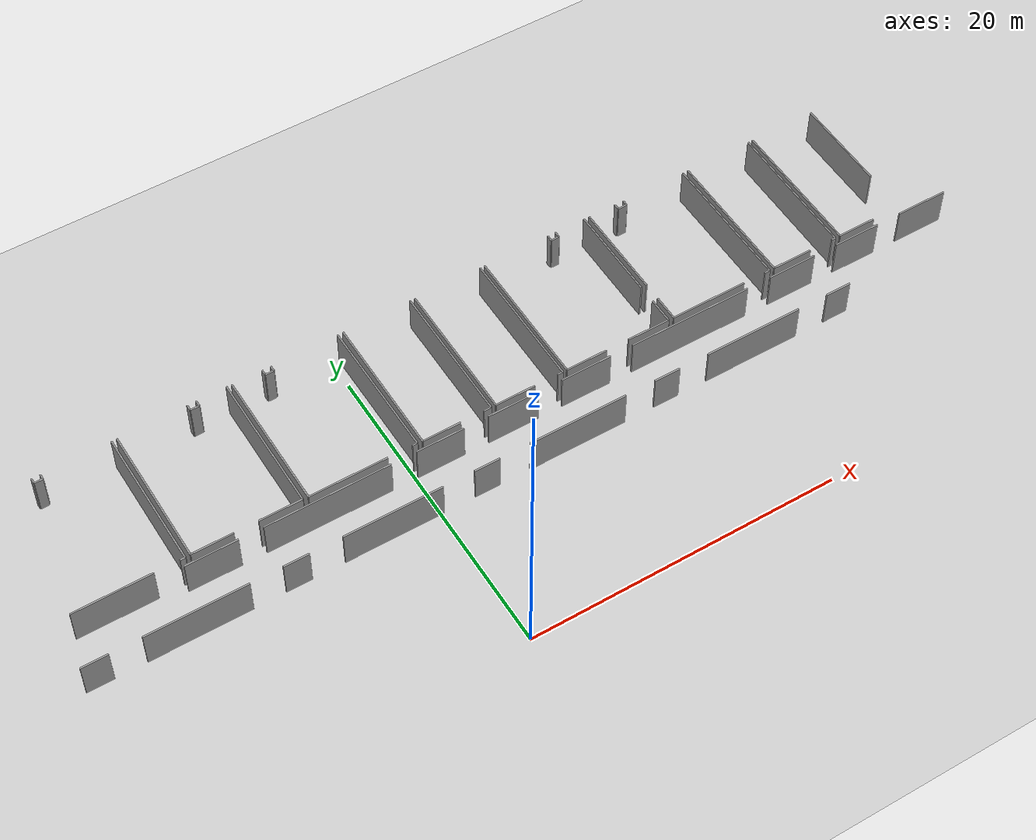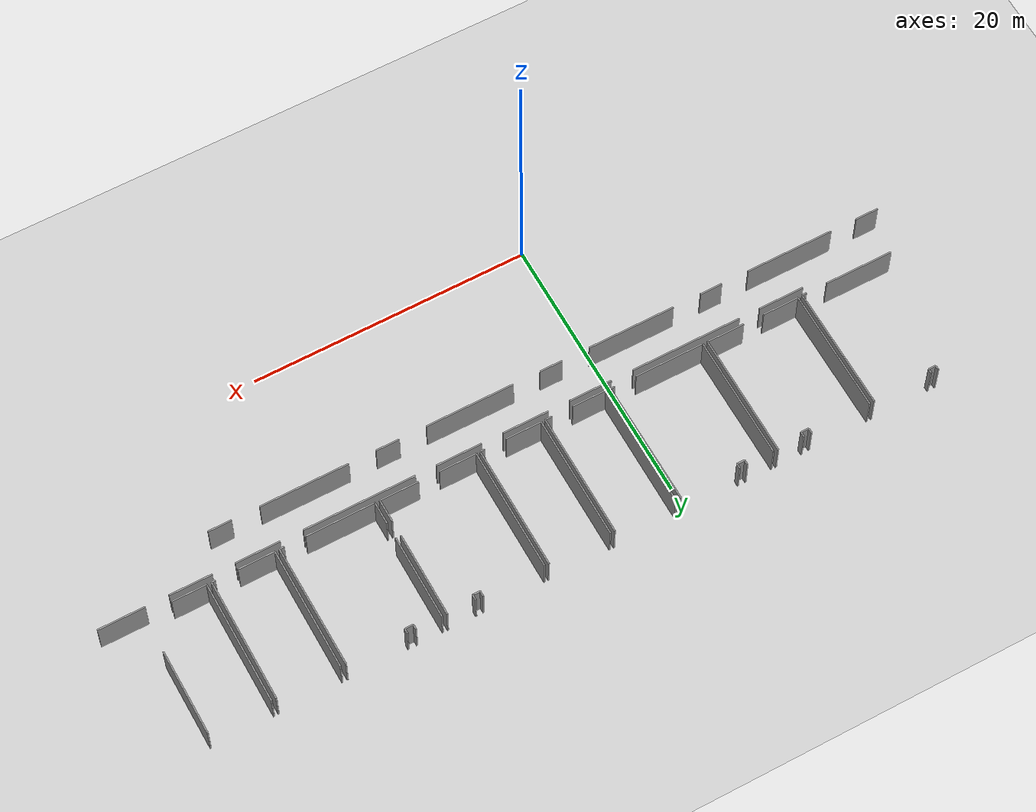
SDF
<sdf version="1.6">
 <world name="default">
  <model name="ground_plane">
   <static>1</static>
   <link name="link">
    <collision name="collision">
     <geometry><plane><normal>0 0 1</normal><size>100 100</size></plane></geometry>
     <surface><friction><ode><mu>100</mu><mu2>50</mu2></ode></friction></surface>
    </collision>
    <visual name="visual">
     <cast_shadows>0</cast_shadows>
     <geometry><plane><normal>0 0 1</normal><size>100 100</size></plane></geometry>
     <material>
      <script><uri>file://media/materials/scripts/gazebo.material</uri><name>Gazebo/Grey</name></script>
     </material>
    </visual>
   </link>
  </model>
  <model name="50010536_PLAN4">
   <static>1</static>
   <link name="Wall_125">
    <collision name="Wall_125_Collision">
     <geometry><box><size>1.66663492366 0.1 2.5</size></box></geometry>
     <pose>0.833317461829 0 1.25 0 0 0</pose>
    </collision>
    <visual name="Wall_125_Visual">
     <pose>0.833317461829 0 1.25 0 0 0</pose>
     <geometry><box><size>1.66663492366 0.1 2.5</size></box></geometry>
     <material>
      <script><uri>file://media/materials/scripts/gazebo.material</uri><name>Gazebo/Grey</name></script>
      <ambient>1 1 1 1</ambient>
     </material>
    </visual>
    <pose>130.382046154 -12.5381074818 0 0 0 3.14159265359</pose>
   </link>
   <link name="Wall_126">
    <collision name="Wall_126_Collision">
     <geometry><box><size>6.3760276799 0.1 2.5</size></box></geometry>
     <pose>3.18801383995 0 1.25 0 0 0</pose>
    </collision>
    <visual name="Wall_126_Visual">
     <pose>3.18801383995 0 1.25 0 0 0</pose>
     <geometry><box><size>6.3760276799 0.1 2.5</size></box></geometry>
     <material>
      <script><uri>file://media/materials/scripts/gazebo.material</uri><name>Gazebo/Grey</name></script>
      <ambient>1 1 1 1</ambient>
     </material>
    </visual>
    <pose>126.72068057 -12.5381074818 0 0 0 3.14159265359</pose>
   </link>
   <link name="Wall_127">
    <collision name="Wall_127_Collision">
     <geometry><box><size>1.69177538647 0.1 2.5</size></box></geometry>
     <pose>0.845887693236 0 1.25 0 0 0</pose>
    </collision>
    <visual name="Wall_127_Visual">
     <pose>0.845887693236 0 1.25 0 0 0</pose>
     <geometry><box><size>1.69177538647 0.1 2.5</size></box></geometry>
     <material>
      <script><uri>file://media/materials/scripts/gazebo.material</uri><name>Gazebo/Grey</name></script>
      <ambient>1 1 1 1</ambient>
     </material>
    </visual>
    <pose>118.387759896 -12.5381074818 0 0 0 3.14159265359</pose>
   </link>
   <link name="Wall_128">
    <collision name="Wall_128_Collision">
     <geometry><box><size>6.3760276799 0.1 2.5</size></box></geometry>
     <pose>3.18801383995 0 1.25 0 0 0</pose>
    </collision>
    <visual name="Wall_128_Visual">
     <pose>3.18801383995 0 1.25 0 0 0</pose>
     <geometry><box><size>6.3760276799 0.1 2.5</size></box></geometry>
     <material>
      <script><uri>file://media/materials/scripts/gazebo.material</uri><name>Gazebo/Grey</name></script>
      <ambient>1 1 1 1</ambient>
     </material>
    </visual>
    <pose>114.726394312 -12.5381074818 0 0 0 3.14159265359</pose>
   </link>
   <link name="Wall_129">
    <collision name="Wall_129_Collision">
     <geometry><box><size>1.64149446085 0.1 2.5</size></box></geometry>
     <pose>0.820747230423 0 1.25 0 0 0</pose>
    </collision>
    <visual name="Wall_129_Visual">
     <pose>0.820747230423 0 1.25 0 0 0</pose>
     <geometry><box><size>1.64149446085 0.1 2.5</size></box></geometry>
     <material>
      <script><uri>file://media/materials/scripts/gazebo.material</uri><name>Gazebo/Grey</name></script>
      <ambient>1 1 1 1</ambient>
     </material>
    </visual>
    <pose>106.368333175 -12.5381074818 0 0 0 3.14159265359</pose>
   </link>
   <link name="Wall_130">
    <collision name="Wall_130_Collision">
     <geometry><box><size>6.31279560677 0.1 2.5</size></box></geometry>
     <pose>3.15639780338 0 1.25 0 0 0</pose>
    </collision>
    <visual name="Wall_130_Visual">
     <pose>3.15639780338 0 1.25 0 0 0</pose>
     <geometry><box><size>6.31279560677 0.1 2.5</size></box></geometry>
     <material>
      <script><uri>file://media/materials/scripts/gazebo.material</uri><name>Gazebo/Grey</name></script>
      <ambient>1 1 1 1</ambient>
     </material>
    </visual>
    <pose>102.71941085 -12.5381074818 0 0 0 3.14159265359</pose>
   </link>
   <link name="Wall_131">
    <collision name="Wall_131_Collision">
     <geometry><box><size>1.61584610989 0.1 2.5</size></box></geometry>
     <pose>0.807923054947 0 1.25 0 0 0</pose>
    </collision>
    <visual name="Wall_131_Visual">
     <pose>0.807923054947 0 1.25 0 0 0</pose>
     <geometry><box><size>1.61584610989 0.1 2.5</size></box></geometry>
     <material>
      <script><uri>file://media/materials/scripts/gazebo.material</uri><name>Gazebo/Grey</name></script>
      <ambient>1 1 1 1</ambient>
     </material>
    </visual>
    <pose>94.3486525093 -12.5381074818 0 0 0 3.14159265359</pose>
   </link>
   <link name="Wall_132">
    <collision name="Wall_132_Collision">
     <geometry><box><size>6.38872488334 0.1 2.5</size></box></geometry>
     <pose>3.19436244167 0 1.25 0 0 0</pose>
    </collision>
    <visual name="Wall_132_Visual">
     <pose>3.19436244167 0 1.25 0 0 0</pose>
     <geometry><box><size>6.38872488334 0.1 2.5</size></box></geometry>
     <material>
      <script><uri>file://media/materials/scripts/gazebo.material</uri><name>Gazebo/Grey</name></script>
      <ambient>1 1 1 1</ambient>
     </material>
    </visual>
    <pose>90.7253785354 -12.5381074818 0 0 0 3.14159265359</pose>
   </link>
   <link name="Wall_133">
    <collision name="Wall_133_Collision">
     <geometry><box><size>1.66663492366 0.1 2.5</size></box></geometry>
     <pose>0.833317461829 0 1.25 0 0 0</pose>
    </collision>
    <visual name="Wall_133_Visual">
     <pose>0.833317461829 0 1.25 0 0 0</pose>
     <geometry><box><size>1.66663492366 0.1 2.5</size></box></geometry>
     <material>
      <script><uri>file://media/materials/scripts/gazebo.material</uri><name>Gazebo/Grey</name></script>
      <ambient>1 1 1 1</ambient>
     </material>
    </visual>
    <pose>82.3924578612 -12.5381074818 0 0 0 3.14159265359</pose>
   </link>
   <link name="Wall_139">
    <collision name="Wall_139_Collision">
     <geometry><box><size>3.29517823699 0.1 2.5</size></box></geometry>
     <pose>1.6475891185 0 1.25 0 0 0</pose>
    </collision>
    <visual name="Wall_139_Visual">
     <pose>1.6475891185 0 1.25 0 0 0</pose>
     <geometry><box><size>3.29517823699 0.1 2.5</size></box></geometry>
     <material>
      <script><uri>file://media/materials/scripts/gazebo.material</uri><name>Gazebo/Grey</name></script>
      <ambient>1 1 1 1</ambient>
     </material>
    </visual>
    <pose>88.2128559185 -9.72273116846 0 0 0 0.0</pose>
   </link>
   <link name="Wall_140">
    <collision name="Wall_140_Collision">
     <geometry><box><size>8.0 0.1 2.5</size></box></geometry>
     <pose>4.0 0 1.25 0 0 0</pose>
    </collision>
    <visual name="Wall_140_Visual">
     <pose>4.0 0 1.25 0 0 0</pose>
     <geometry><box><size>8.0 0.1 2.5</size></box></geometry>
     <material>
      <script><uri>file://media/materials/scripts/gazebo.material</uri><name>Gazebo/Grey</name></script>
      <ambient>1 1 1 1</ambient>
     </material>
    </visual>
    <pose>93.0421102752 -9.72273116846 0 0 0 0.0</pose>
   </link>
   <link name="Wall_141">
    <collision name="Wall_141_Collision">
     <geometry><box><size>3.07805605815 0.1 2.5</size></box></geometry>
     <pose>1.53902802908 0 1.25 0 0 0</pose>
    </collision>
    <visual name="Wall_141_Visual">
     <pose>1.53902802908 0 1.25 0 0 0</pose>
     <geometry><box><size>3.07805605815 0.1 2.5</size></box></geometry>
     <material>
      <script><uri>file://media/materials/scripts/gazebo.material</uri><name>Gazebo/Grey</name></script>
      <ambient>1 1 1 1</ambient>
     </material>
    </visual>
    <pose>102.65389328 -9.72273116846 0 0 0 0.0</pose>
   </link>
   <link name="Wall_142">
    <collision name="Wall_142_Collision">
     <geometry><box><size>3.33377773545 0.1 2.5</size></box></geometry>
     <pose>1.66688886773 0 1.25 0 0 0</pose>
    </collision>
    <visual name="Wall_142_Visual">
     <pose>1.66688886773 0 1.25 0 0 0</pose>
     <geometry><box><size>3.33377773545 0.1 2.5</size></box></geometry>
     <material>
      <script><uri>file://media/materials/scripts/gazebo.material</uri><name>Gazebo/Grey</name></script>
      <ambient>1 1 1 1</ambient>
     </material>
    </visual>
    <pose>107.314528775 -9.72273116846 0 0 0 0.0</pose>
   </link>
   <link name="Wall_143">
    <collision name="Wall_143_Collision">
     <geometry><box><size>3.29517823699 0.1 2.5</size></box></geometry>
     <pose>1.6475891185 0 1.25 0 0 0</pose>
    </collision>
    <visual name="Wall_143_Visual">
     <pose>1.6475891185 0 1.25 0 0 0</pose>
     <geometry><box><size>3.29517823699 0.1 2.5</size></box></geometry>
     <material>
      <script><uri>file://media/materials/scripts/gazebo.material</uri><name>Gazebo/Grey</name></script>
      <ambient>1 1 1 1</ambient>
     </material>
    </visual>
    <pose>112.213871695 -9.72273116846 0 0 0 0.0</pose>
   </link>
   <link name="Wall_144">
    <collision name="Wall_144_Collision">
     <geometry><box><size>8.04367837984 0.1 2.5</size></box></geometry>
     <pose>4.02183918992 0 1.25 0 0 0</pose>
    </collision>
    <visual name="Wall_144_Visual">
     <pose>4.02183918992 0 1.25 0 0 0</pose>
     <geometry><box><size>8.04367837984 0.1 2.5</size></box></geometry>
     <material>
      <script><uri>file://media/materials/scripts/gazebo.material</uri><name>Gazebo/Grey</name></script>
      <ambient>1 1 1 1</ambient>
     </material>
    </visual>
    <pose>117.013414595 -9.72273116846 0 0 0 0.0</pose>
   </link>
   <link name="Wall_145">
    <collision name="Wall_145_Collision">
     <geometry><box><size>3.17252325175 0.1 2.5</size></box></geometry>
     <pose>1.58626162588 0 1.25 0 0 0</pose>
    </collision>
    <visual name="Wall_145_Visual">
     <pose>1.58626162588 0 1.25 0 0 0</pose>
     <geometry><box><size>3.17252325175 0.1 2.5</size></box></geometry>
     <material>
      <script><uri>file://media/materials/scripts/gazebo.material</uri><name>Gazebo/Grey</name></script>
      <ambient>1 1 1 1</ambient>
     </material>
    </visual>
    <pose>126.686906009 -9.72273116846 0 0 0 0.0</pose>
   </link>
   <link name="Wall_146">
    <collision name="Wall_146_Collision">
     <geometry><box><size>3.03386979018 0.1 2.5</size></box></geometry>
     <pose>1.51693489509 0 1.25 0 0 0</pose>
    </collision>
    <visual name="Wall_146_Visual">
     <pose>1.51693489509 0 1.25 0 0 0</pose>
     <geometry><box><size>3.03386979018 0.1 2.5</size></box></geometry>
     <material>
      <script><uri>file://media/materials/scripts/gazebo.material</uri><name>Gazebo/Grey</name></script>
      <ambient>1 1 1 1</ambient>
     </material>
    </visual>
    <pose>131.462324223 -9.72273116846 0 0 0 0.0</pose>
   </link>
   <link name="Wall_147">
    <collision name="Wall_147_Collision">
     <geometry><box><size>3.3309843507 0.1 2.5</size></box></geometry>
     <pose>1.66549217535 0 1.25 0 0 0</pose>
    </collision>
    <visual name="Wall_147_Visual">
     <pose>1.66549217535 0 1.25 0 0 0</pose>
     <geometry><box><size>3.3309843507 0.1 2.5</size></box></geometry>
     <material>
      <script><uri>file://media/materials/scripts/gazebo.material</uri><name>Gazebo/Grey</name></script>
      <ambient>1 1 1 1</ambient>
     </material>
    </visual>
    <pose>136.137688474 -9.72273116846 0 0 0 0.0</pose>
   </link>
   <link name="Wall_165">
    <collision name="Wall_165_Collision">
     <geometry><box><size>0.321493191125 0.1 2.5</size></box></geometry>
     <pose>0.160746595562 0 1.25 0 0 0</pose>
    </collision>
    <visual name="Wall_165_Visual">
     <pose>0.160746595562 0 1.25 0 0 0</pose>
     <geometry><box><size>0.321493191125 0.1 2.5</size></box></geometry>
     <material>
      <script><uri>file://media/materials/scripts/gazebo.material</uri><name>Gazebo/Grey</name></script>
      <ambient>1 1 1 1</ambient>
     </material>
    </visual>
    <pose>88.5323175571 -9.25504237692 0 0 0 3.14159265359</pose>
   </link>
   <link name="Wall_166">
    <collision name="Wall_166_Collision">
     <geometry><box><size>4.97425642002 0.1 2.5</size></box></geometry>
     <pose>2.48712821001 0 1.25 0 0 0</pose>
    </collision>
    <visual name="Wall_166_Visual">
     <pose>2.48712821001 0 1.25 0 0 0</pose>
     <geometry><box><size>4.97425642002 0.1 2.5</size></box></geometry>
     <material>
      <script><uri>file://media/materials/scripts/gazebo.material</uri><name>Gazebo/Grey</name></script>
      <ambient>1 1 1 1</ambient>
     </material>
    </visual>
    <pose>86.6597339936 -9.25504237692 0 0 0 3.14159265359</pose>
   </link>
   <link name="Wall_168">
    <collision name="Wall_168_Collision">
     <geometry><box><size>0.343687902739 0.1 2.5</size></box></geometry>
     <pose>0.17184395137 0 1.25 0 0 0</pose>
    </collision>
    <visual name="Wall_168_Visual">
     <pose>0.17184395137 0 1.25 0 0 0</pose>
     <geometry><box><size>0.343687902739 0.1 2.5</size></box></geometry>
     <material>
      <script><uri>file://media/materials/scripts/gazebo.material</uri><name>Gazebo/Grey</name></script>
      <ambient>1 1 1 1</ambient>
     </material>
    </visual>
    <pose>83.6438942323 -0.207624670666 0 0 0 -1.57079632679</pose>
   </link>
   <link name="Wall_169">
    <collision name="Wall_169_Collision">
     <geometry><box><size>0.534552264864 0.1 2.5</size></box></geometry>
     <pose>0.267276132432 0 1.25 0 0 0</pose>
    </collision>
    <visual name="Wall_169_Visual">
     <pose>0.267276132432 0 1.25 0 0 0</pose>
     <geometry><box><size>0.534552264864 0.1 2.5</size></box></geometry>
     <material>
      <script><uri>file://media/materials/scripts/gazebo.material</uri><name>Gazebo/Grey</name></script>
      <ambient>1 1 1 1</ambient>
     </material>
    </visual>
    <pose>83.6438942323 -0.551312573406 0 0 0 0.0</pose>
   </link>
   <link name="Wall_170">
    <collision name="Wall_170_Collision">
     <geometry><box><size>0.334139605752 0.1 2.5</size></box></geometry>
     <pose>0.167069802876 0 1.25 0 0 0</pose>
    </collision>
    <visual name="Wall_170_Visual">
     <pose>0.167069802876 0 1.25 0 0 0</pose>
     <geometry><box><size>0.334139605752 0.1 2.5</size></box></geometry>
     <material>
      <script><uri>file://media/materials/scripts/gazebo.material</uri><name>Gazebo/Grey</name></script>
      <ambient>1 1 1 1</ambient>
     </material>
    </visual>
    <pose>84.1784464972 -0.551312573406 0 0 0 1.57079632679</pose>
   </link>
   <link name="Wall_171">
    <collision name="Wall_171_Collision">
     <geometry><box><size>9.03788059735 0.1 2.5</size></box></geometry>
     <pose>4.51894029868 0 1.25 0 0 0</pose>
    </collision>
    <visual name="Wall_171_Visual">
     <pose>4.51894029868 0 1.25 0 0 0</pose>
     <geometry><box><size>9.03788059735 0.1 2.5</size></box></geometry>
     <material>
      <script><uri>file://media/materials/scripts/gazebo.material</uri><name>Gazebo/Grey</name></script>
      <ambient>1 1 1 1</ambient>
     </material>
    </visual>
    <pose>88.5180966892 -0.217172967654 0 0 0 -1.5692228524</pose>
   </link>
   <link name="Wall_172">
    <collision name="Wall_172_Collision">
     <geometry><box><size>2.72253436181 0.1 2.5</size></box></geometry>
     <pose>1.3612671809 0 1.25 0 0 0</pose>
    </collision>
    <visual name="Wall_172_Visual">
     <pose>1.3612671809 0 1.25 0 0 0</pose>
     <geometry><box><size>2.72253436181 0.1 2.5</size></box></geometry>
     <material>
      <script><uri>file://media/materials/scripts/gazebo.material</uri><name>Gazebo/Grey</name></script>
      <ambient>1 1 1 1</ambient>
     </material>
    </visual>
    <pose>95.7341713488 -9.22210583119 0 0 0 3.14159265359</pose>
   </link>
   <link name="Wall_173">
    <collision name="Wall_173_Collision">
     <geometry><box><size>2.6387328191 0.1 2.5</size></box></geometry>
     <pose>1.31936640955 0 1.25 0 0 0</pose>
    </collision>
    <visual name="Wall_173_Visual">
     <pose>1.31936640955 0 1.25 0 0 0</pose>
     <geometry><box><size>2.6387328191 0.1 2.5</size></box></geometry>
     <material>
      <script><uri>file://media/materials/scripts/gazebo.material</uri><name>Gazebo/Grey</name></script>
      <ambient>1 1 1 1</ambient>
     </material>
    </visual>
    <pose>91.495336952 -9.22210583119 0 0 0 3.14159265359</pose>
   </link>
   <link name="Wall_174">
    <collision name="Wall_174_Collision">
     <geometry><box><size>9.02402945751 0.1 2.5</size></box></geometry>
     <pose>4.51201472876 0 1.25 0 0 0</pose>
    </collision>
    <visual name="Wall_174_Visual">
     <pose>4.51201472876 0 1.25 0 0 0</pose>
     <geometry><box><size>9.02402945751 0.1 2.5</size></box></geometry>
     <material>
      <script><uri>file://media/materials/scripts/gazebo.material</uri><name>Gazebo/Grey</name></script>
      <ambient>1 1 1 1</ambient>
     </material>
    </visual>
    <pose>88.8566041329 -9.22210583119 0 0 0 1.57079632679</pose>
   </link>
   <link name="Wall_175">
    <collision name="Wall_175_Collision">
     <geometry><box><size>0.38188109069 0.1 2.5</size></box></geometry>
     <pose>0.190940545345 0 1.25 0 0 0</pose>
    </collision>
    <visual name="Wall_175_Visual">
     <pose>0.190940545345 0 1.25 0 0 0</pose>
     <geometry><box><size>0.38188109069 0.1 2.5</size></box></geometry>
     <material>
      <script><uri>file://media/materials/scripts/gazebo.material</uri><name>Gazebo/Grey</name></script>
      <ambient>1 1 1 1</ambient>
     </material>
    </visual>
    <pose>93.247804971 -0.198076373679 0 0 0 -1.57079632679</pose>
   </link>
   <link name="Wall_176">
    <collision name="Wall_176_Collision">
     <geometry><box><size>0.572897819255 0.1 2.5</size></box></geometry>
     <pose>0.286448909628 0 1.25 0 0 0</pose>
    </collision>
    <visual name="Wall_176_Visual">
     <pose>0.286448909628 0 1.25 0 0 0</pose>
     <geometry><box><size>0.572897819255 0.1 2.5</size></box></geometry>
     <material>
      <script><uri>file://media/materials/scripts/gazebo.material</uri><name>Gazebo/Grey</name></script>
      <ambient>1 1 1 1</ambient>
     </material>
    </visual>
    <pose>93.247804971 -0.579957464368 0 0 0 0.0</pose>
   </link>
   <link name="Wall_177">
    <collision name="Wall_177_Collision">
     <geometry><box><size>0.410525981653 0.1 2.5</size></box></geometry>
     <pose>0.205262990826 0 1.25 0 0 0</pose>
    </collision>
    <visual name="Wall_177_Visual">
     <pose>0.205262990826 0 1.25 0 0 0</pose>
     <geometry><box><size>0.410525981653 0.1 2.5</size></box></geometry>
     <material>
      <script><uri>file://media/materials/scripts/gazebo.material</uri><name>Gazebo/Grey</name></script>
      <ambient>1 1 1 1</ambient>
     </material>
    </visual>
    <pose>93.8207027902 -0.579957464368 0 0 0 1.57079632679</pose>
   </link>
   <link name="Wall_178">
    <collision name="Wall_178_Collision">
     <geometry><box><size>9.05268674708 0.1 2.5</size></box></geometry>
     <pose>4.52634337354 0 1.25 0 0 0</pose>
    </collision>
    <visual name="Wall_178_Visual">
     <pose>4.52634337354 0 1.25 0 0 0</pose>
     <geometry><box><size>9.05268674708 0.1 2.5</size></box></geometry>
     <material>
      <script><uri>file://media/materials/scripts/gazebo.material</uri><name>Gazebo/Grey</name></script>
      <ambient>1 1 1 1</ambient>
     </material>
    </visual>
    <pose>95.7491540488 -0.169431482716 0 0 0 -1.57245138317</pose>
   </link>
   <link name="Wall_179">
    <collision name="Wall_179_Collision">
     <geometry><box><size>0.328349680983 0.1 2.5</size></box></geometry>
     <pose>0.164174840491 0 1.25 0 0 0</pose>
    </collision>
    <visual name="Wall_179_Visual">
     <pose>0.164174840491 0 1.25 0 0 0</pose>
     <geometry><box><size>0.328349680983 0.1 2.5</size></box></geometry>
     <material>
      <script><uri>file://media/materials/scripts/gazebo.material</uri><name>Gazebo/Grey</name></script>
      <ambient>1 1 1 1</ambient>
     </material>
    </visual>
    <pose>102.997225661 -9.24295463924 0 0 0 3.14159265359</pose>
   </link>
   <link name="Wall_180">
    <collision name="Wall_180_Collision">
     <geometry><box><size>5.00904675745 0.1 2.5</size></box></geometry>
     <pose>2.50452337873 0 1.25 0 0 0</pose>
    </collision>
    <visual name="Wall_180_Visual">
     <pose>2.50452337873 0 1.25 0 0 0</pose>
     <geometry><box><size>5.00904675745 0.1 2.5</size></box></geometry>
     <material>
      <script><uri>file://media/materials/scripts/gazebo.material</uri><name>Gazebo/Grey</name></script>
      <ambient>1 1 1 1</ambient>
     </material>
    </visual>
    <pose>101.090105704 -9.24295463924 0 0 0 3.14159265359</pose>
   </link>
   <link name="Wall_181">
    <collision name="Wall_181_Collision">
     <geometry><box><size>9.0461225915 0.1 2.5</size></box></geometry>
     <pose>4.52306129575 0 1.25 0 0 0</pose>
    </collision>
    <visual name="Wall_181_Visual">
     <pose>4.52306129575 0 1.25 0 0 0</pose>
     <geometry><box><size>9.0461225915 0.1 2.5</size></box></geometry>
     <material>
      <script><uri>file://media/materials/scripts/gazebo.material</uri><name>Gazebo/Grey</name></script>
      <ambient>1 1 1 1</ambient>
     </material>
    </visual>
    <pose>96.0810589468 -9.24295463924 0 0 0 1.57079632679</pose>
   </link>
   <link name="Wall_182">
    <collision name="Wall_182_Collision">
     <geometry><box><size>0.373577119639 0.1 2.5</size></box></geometry>
     <pose>0.18678855982 0 1.25 0 0 0</pose>
    </collision>
    <visual name="Wall_182_Visual">
     <pose>0.18678855982 0 1.25 0 0 0</pose>
     <geometry><box><size>0.373577119639 0.1 2.5</size></box></geometry>
     <material>
      <script><uri>file://media/materials/scripts/gazebo.material</uri><name>Gazebo/Grey</name></script>
      <ambient>1 1 1 1</ambient>
     </material>
    </visual>
    <pose>98.0232231851 -0.196832047741 0 0 0 -1.57079632679</pose>
   </link>
   <link name="Wall_183">
    <collision name="Wall_183_Collision">
     <geometry><box><size>0.556137510713 0.1 2.5</size></box></geometry>
     <pose>0.278068755357 0 1.25 0 0 0</pose>
    </collision>
    <visual name="Wall_183_Visual">
     <pose>0.278068755357 0 1.25 0 0 0</pose>
     <geometry><box><size>0.556137510713 0.1 2.5</size></box></geometry>
     <material>
      <script><uri>file://media/materials/scripts/gazebo.material</uri><name>Gazebo/Grey</name></script>
      <ambient>1 1 1 1</ambient>
     </material>
    </visual>
    <pose>98.0232231851 -0.570409167381 0 0 0 0.0</pose>
   </link>
   <link name="Wall_184">
    <collision name="Wall_184_Collision">
     <geometry><box><size>0.373577119639 0.1 2.5</size></box></geometry>
     <pose>0.18678855982 0 1.25 0 0 0</pose>
    </collision>
    <visual name="Wall_184_Visual">
     <pose>0.18678855982 0 1.25 0 0 0</pose>
     <geometry><box><size>0.373577119639 0.1 2.5</size></box></geometry>
     <material>
      <script><uri>file://media/materials/scripts/gazebo.material</uri><name>Gazebo/Grey</name></script>
      <ambient>1 1 1 1</ambient>
     </material>
    </visual>
    <pose>98.5793606958 -0.570409167381 0 0 0 1.57079632679</pose>
   </link>
   <link name="Wall_185">
    <collision name="Wall_185_Collision">
     <geometry><box><size>9.04631776044 0.1 2.5</size></box></geometry>
     <pose>4.52315888022 0 1.25 0 0 0</pose>
    </collision>
    <visual name="Wall_185_Visual">
     <pose>4.52315888022 0 1.25 0 0 0</pose>
     <geometry><box><size>9.04631776044 0.1 2.5</size></box></geometry>
     <material>
      <script><uri>file://media/materials/scripts/gazebo.material</uri><name>Gazebo/Grey</name></script>
      <ambient>1 1 1 1</ambient>
     </material>
    </visual>
    <pose>102.937802749 -0.196832047741 0 0 0 -1.56422753925</pose>
   </link>
   <link name="Wall_186">
    <collision name="Wall_186_Collision">
     <geometry><box><size>0.493667269784 0.1 2.5</size></box></geometry>
     <pose>0.246833634892 0 1.25 0 0 0</pose>
    </collision>
    <visual name="Wall_186_Visual">
     <pose>0.246833634892 0 1.25 0 0 0</pose>
     <geometry><box><size>0.493667269784 0.1 2.5</size></box></geometry>
     <material>
      <script><uri>file://media/materials/scripts/gazebo.material</uri><name>Gazebo/Grey</name></script>
      <ambient>1 1 1 1</ambient>
     </material>
    </visual>
    <pose>107.793721233 -9.28020823414 0 0 0 3.14159265359</pose>
   </link>
   <link name="Wall_187">
    <collision name="Wall_187_Collision">
     <geometry><box><size>2.46808240485 0.1 2.5</size></box></geometry>
     <pose>1.23404120243 0 1.25 0 0 0</pose>
    </collision>
    <visual name="Wall_187_Visual">
     <pose>1.23404120243 0 1.25 0 0 0</pose>
     <geometry><box><size>2.46808240485 0.1 2.5</size></box></geometry>
     <material>
      <script><uri>file://media/materials/scripts/gazebo.material</uri><name>Gazebo/Grey</name></script>
      <ambient>1 1 1 1</ambient>
     </material>
    </visual>
    <pose>105.775373774 -9.28020823414 0 0 0 3.14159265359</pose>
   </link>
   <link name="Wall_188">
    <collision name="Wall_188_Collision">
     <geometry><box><size>9.10361552868 0.1 2.5</size></box></geometry>
     <pose>4.55180776434 0 1.25 0 0 0</pose>
    </collision>
    <visual name="Wall_188_Visual">
     <pose>4.55180776434 0 1.25 0 0 0</pose>
     <geometry><box><size>9.10361552868 0.1 2.5</size></box></geometry>
     <material>
      <script><uri>file://media/materials/scripts/gazebo.material</uri><name>Gazebo/Grey</name></script>
      <ambient>1 1 1 1</ambient>
     </material>
    </visual>
    <pose>103.307291369 -9.28020823414 0 0 0 1.57079632679</pose>
   </link>
   <link name="Wall_189">
    <collision name="Wall_189_Collision">
     <geometry><box><size>9.10362914361 0.1 2.5</size></box></geometry>
     <pose>4.5518145718 0 1.25 0 0 0</pose>
    </collision>
    <visual name="Wall_189_Visual">
     <pose>4.5518145718 0 1.25 0 0 0</pose>
     <geometry><box><size>9.10362914361 0.1 2.5</size></box></geometry>
     <material>
      <script><uri>file://media/materials/scripts/gazebo.material</uri><name>Gazebo/Grey</name></script>
      <ambient>1 1 1 1</ambient>
     </material>
    </visual>
    <pose>107.777976701 -0.176592705457 0 0 0 -1.56906684728</pose>
   </link>
   <link name="Wall_190">
    <collision name="Wall_190_Collision">
     <geometry><box><size>0.353490143796 0.1 2.5</size></box></geometry>
     <pose>0.176745071898 0 1.25 0 0 0</pose>
    </collision>
    <visual name="Wall_190_Visual">
     <pose>0.176745071898 0 1.25 0 0 0</pose>
     <geometry><box><size>0.353490143796 0.1 2.5</size></box></geometry>
     <material>
      <script><uri>file://media/materials/scripts/gazebo.material</uri><name>Gazebo/Grey</name></script>
      <ambient>1 1 1 1</ambient>
     </material>
    </visual>
    <pose>112.567361839 -9.26822207409 0 0 0 3.14159265359</pose>
   </link>
   <link name="Wall_191">
    <collision name="Wall_191_Collision">
     <geometry><box><size>2.57778624258 0.1 2.5</size></box></geometry>
     <pose>1.28889312129 0 1.25 0 0 0</pose>
    </collision>
    <visual name="Wall_191_Visual">
     <pose>1.28889312129 0 1.25 0 0 0</pose>
     <geometry><box><size>2.57778624258 0.1 2.5</size></box></geometry>
     <material>
      <script><uri>file://media/materials/scripts/gazebo.material</uri><name>Gazebo/Grey</name></script>
      <ambient>1 1 1 1</ambient>
     </material>
    </visual>
    <pose>110.670653589 -9.26822207409 0 0 0 3.14159265359</pose>
   </link>
   <link name="Wall_192">
    <collision name="Wall_192_Collision">
     <geometry><box><size>9.08159857791 0.1 2.5</size></box></geometry>
     <pose>4.54079928896 0 1.25 0 0 0</pose>
    </collision>
    <visual name="Wall_192_Visual">
     <pose>4.54079928896 0 1.25 0 0 0</pose>
     <geometry><box><size>9.08159857791 0.1 2.5</size></box></geometry>
     <material>
      <script><uri>file://media/materials/scripts/gazebo.material</uri><name>Gazebo/Grey</name></script>
      <ambient>1 1 1 1</ambient>
     </material>
    </visual>
    <pose>108.092867346 -9.26822207409 0 0 0 1.57079632679</pose>
   </link>
   <link name="Wall_193">
    <collision name="Wall_193_Collision">
     <geometry><box><size>9.08163198407 0.1 2.5</size></box></geometry>
     <pose>4.54081599204 0 1.25 0 0 0</pose>
    </collision>
    <visual name="Wall_193_Visual">
     <pose>4.54081599204 0 1.25 0 0 0</pose>
     <geometry><box><size>9.08163198407 0.1 2.5</size></box></geometry>
     <material>
      <script><uri>file://media/materials/scripts/gazebo.material</uri><name>Gazebo/Grey</name></script>
      <ambient>1 1 1 1</ambient>
     </material>
    </visual>
    <pose>112.542729264 -0.186623496175 0 0 0 -1.56808397235</pose>
   </link>
   <link name="Wall_194">
    <collision name="Wall_194_Collision">
     <geometry><box><size>2.7885598197 0.1 2.5</size></box></geometry>
     <pose>1.39427990985 0 1.25 0 0 0</pose>
    </collision>
    <visual name="Wall_194_Visual">
     <pose>1.39427990985 0 1.25 0 0 0</pose>
     <geometry><box><size>2.7885598197 0.1 2.5</size></box></geometry>
     <material>
      <script><uri>file://media/materials/scripts/gazebo.material</uri><name>Gazebo/Grey</name></script>
      <ambient>1 1 1 1</ambient>
     </material>
    </visual>
    <pose>119.821528108 -9.25504237692 0 0 0 3.14159265359</pose>
   </link>
   <link name="Wall_195">
    <collision name="Wall_195_Collision">
     <geometry><box><size>2.6859664159 0.1 2.5</size></box></geometry>
     <pose>1.34298320795 0 1.25 0 0 0</pose>
    </collision>
    <visual name="Wall_195_Visual">
     <pose>1.34298320795 0 1.25 0 0 0</pose>
     <geometry><box><size>2.6859664159 0.1 2.5</size></box></geometry>
     <material>
      <script><uri>file://media/materials/scripts/gazebo.material</uri><name>Gazebo/Grey</name></script>
      <ambient>1 1 1 1</ambient>
     </material>
    </visual>
    <pose>115.532412786 -9.25504237692 0 0 0 3.14159265359</pose>
   </link>
   <link name="Wall_196">
    <collision name="Wall_196_Collision">
     <geometry><box><size>9.0645843253 0.1 2.5</size></box></geometry>
     <pose>4.53229216265 0 1.25 0 0 0</pose>
    </collision>
    <visual name="Wall_196_Visual">
     <pose>4.53229216265 0 1.25 0 0 0</pose>
     <geometry><box><size>9.0645843253 0.1 2.5</size></box></geometry>
     <material>
      <script><uri>file://media/materials/scripts/gazebo.material</uri><name>Gazebo/Grey</name></script>
      <ambient>1 1 1 1</ambient>
     </material>
    </visual>
    <pose>112.84644637 -9.25504237692 0 0 0 1.57079632679</pose>
   </link>
   <link name="Wall_197">
    <collision name="Wall_197_Collision">
     <geometry><box><size>0.39140399327 0.1 2.5</size></box></geometry>
     <pose>0.195701996635 0 1.25 0 0 0</pose>
    </collision>
    <visual name="Wall_197_Visual">
     <pose>0.195701996635 0 1.25 0 0 0</pose>
     <geometry><box><size>0.39140399327 0.1 2.5</size></box></geometry>
     <material>
      <script><uri>file://media/materials/scripts/gazebo.material</uri><name>Gazebo/Grey</name></script>
      <ambient>1 1 1 1</ambient>
     </material>
    </visual>
    <pose>117.251360188 -0.190458051614 0 0 0 -1.57079632679</pose>
   </link>
   <link name="Wall_198">
    <collision name="Wall_198_Collision">
     <geometry><box><size>0.530235215694 0.1 2.5</size></box></geometry>
     <pose>0.265117607847 0 1.25 0 0 0</pose>
    </collision>
    <visual name="Wall_198_Visual">
     <pose>0.265117607847 0 1.25 0 0 0</pose>
     <geometry><box><size>0.530235215694 0.1 2.5</size></box></geometry>
     <material>
      <script><uri>file://media/materials/scripts/gazebo.material</uri><name>Gazebo/Grey</name></script>
      <ambient>1 1 1 1</ambient>
     </material>
    </visual>
    <pose>117.251360188 -0.581862044885 0 0 0 0.0</pose>
   </link>
   <link name="Wall_199">
    <collision name="Wall_199_Collision">
     <geometry><box><size>0.404025013491 0.1 2.5</size></box></geometry>
     <pose>0.202012506745 0 1.25 0 0 0</pose>
    </collision>
    <visual name="Wall_199_Visual">
     <pose>0.202012506745 0 1.25 0 0 0</pose>
     <geometry><box><size>0.404025013491 0.1 2.5</size></box></geometry>
     <material>
      <script><uri>file://media/materials/scripts/gazebo.material</uri><name>Gazebo/Grey</name></script>
      <ambient>1 1 1 1</ambient>
     </material>
    </visual>
    <pose>117.781595404 -0.581862044885 0 0 0 1.57079632679</pose>
   </link>
   <link name="Wall_200">
    <collision name="Wall_200_Collision">
     <geometry><box><size>6.23333650763 0.1 2.5</size></box></geometry>
     <pose>3.11666825382 0 1.25 0 0 0</pose>
    </collision>
    <visual name="Wall_200_Visual">
     <pose>3.11666825382 0 1.25 0 0 0</pose>
     <geometry><box><size>6.23333650763 0.1 2.5</size></box></geometry>
     <material>
      <script><uri>file://media/materials/scripts/gazebo.material</uri><name>Gazebo/Grey</name></script>
      <ambient>1 1 1 1</ambient>
     </material>
    </visual>
    <pose>119.806291464 -0.177837031394 0 0 0 -1.57079632679</pose>
   </link>
   <link name="Wall_201">
    <collision name="Wall_201_Collision">
     <geometry><box><size>1.65916274788 0.1 2.5</size></box></geometry>
     <pose>0.829581373939 0 1.25 0 0 0</pose>
    </collision>
    <visual name="Wall_201_Visual">
     <pose>0.829581373939 0 1.25 0 0 0</pose>
     <geometry><box><size>1.65916274788 0.1 2.5</size></box></geometry>
     <material>
      <script><uri>file://media/materials/scripts/gazebo.material</uri><name>Gazebo/Grey</name></script>
      <ambient>1 1 1 1</ambient>
     </material>
    </visual>
    <pose>119.806291464 -7.5959495921 0 0 0 -1.56161286464</pose>
   </link>
   <link name="Wall_202">
    <collision name="Wall_202_Collision">
     <geometry><box><size>0.348411262419 0.1 2.5</size></box></geometry>
     <pose>0.17420563121 0 1.25 0 0 0</pose>
    </collision>
    <visual name="Wall_202_Visual">
     <pose>0.17420563121 0 1.25 0 0 0</pose>
     <geometry><box><size>0.348411262419 0.1 2.5</size></box></geometry>
     <material>
      <script><uri>file://media/materials/scripts/gazebo.material</uri><name>Gazebo/Grey</name></script>
      <ambient>1 1 1 1</ambient>
     </material>
    </visual>
    <pose>126.973608863 -9.2656826334 0 0 0 3.14159265359</pose>
   </link>
   <link name="Wall_203">
    <collision name="Wall_203_Collision">
     <geometry><box><size>4.94911595721 0.1 2.5</size></box></geometry>
     <pose>2.47455797861 0 1.25 0 0 0</pose>
    </collision>
    <visual name="Wall_203_Visual">
     <pose>2.47455797861 0 1.25 0 0 0</pose>
     <geometry><box><size>4.94911595721 0.1 2.5</size></box></geometry>
     <material>
      <script><uri>file://media/materials/scripts/gazebo.material</uri><name>Gazebo/Grey</name></script>
      <ambient>1 1 1 1</ambient>
     </material>
    </visual>
    <pose>125.117023776 -9.2656826334 0 0 0 3.14159265359</pose>
   </link>
   <link name="Wall_204">
    <collision name="Wall_204_Collision">
     <geometry><box><size>1.66404469416 0.1 2.5</size></box></geometry>
     <pose>0.832022347078 0 1.25 0 0 0</pose>
    </collision>
    <visual name="Wall_204_Visual">
     <pose>0.832022347078 0 1.25 0 0 0</pose>
     <geometry><box><size>1.66404469416 0.1 2.5</size></box></geometry>
     <material>
      <script><uri>file://media/materials/scripts/gazebo.material</uri><name>Gazebo/Grey</name></script>
      <ambient>1 1 1 1</ambient>
     </material>
    </visual>
    <pose>120.167907818 -9.2656826334 0 0 0 1.57079632679</pose>
   </link>
   <link name="Wall_205">
    <collision name="Wall_205_Collision">
     <geometry><box><size>6.22018220487 0.1 2.5</size></box></geometry>
     <pose>3.11009110243 0 1.25 0 0 0</pose>
    </collision>
    <visual name="Wall_205_Visual">
     <pose>3.11009110243 0 1.25 0 0 0</pose>
     <geometry><box><size>6.22018220487 0.1 2.5</size></box></geometry>
     <material>
      <script><uri>file://media/materials/scripts/gazebo.material</uri><name>Gazebo/Grey</name></script>
      <ambient>1 1 1 1</ambient>
     </material>
    </visual>
    <pose>120.167907818 -6.42747674825 0 0 0 1.57079632679</pose>
   </link>
   <link name="Wall_206">
    <collision name="Wall_206_Collision">
     <geometry><box><size>0.368168110974 0.1 2.5</size></box></geometry>
     <pose>0.184084055487 0 1.25 0 0 0</pose>
    </collision>
    <visual name="Wall_206_Visual">
     <pose>0.184084055487 0 1.25 0 0 0</pose>
     <geometry><box><size>0.368168110974 0.1 2.5</size></box></geometry>
     <material>
      <script><uri>file://media/materials/scripts/gazebo.material</uri><name>Gazebo/Grey</name></script>
      <ambient>1 1 1 1</ambient>
     </material>
    </visual>
    <pose>122.001891883 -0.207294543377 0 0 0 -1.57079632679</pose>
   </link>
   <link name="Wall_207">
    <collision name="Wall_207_Collision">
     <geometry><box><size>0.599054058344 0.1 2.5</size></box></geometry>
     <pose>0.299527029172 0 1.25 0 0 0</pose>
    </collision>
    <visual name="Wall_207_Visual">
     <pose>0.299527029172 0 1.25 0 0 0</pose>
     <geometry><box><size>0.599054058344 0.1 2.5</size></box></geometry>
     <material>
      <script><uri>file://media/materials/scripts/gazebo.material</uri><name>Gazebo/Grey</name></script>
      <ambient>1 1 1 1</ambient>
     </material>
    </visual>
    <pose>122.001891883 -0.57546265435 0 0 0 0.0</pose>
   </link>
   <link name="Wall_208">
    <collision name="Wall_208_Collision">
     <geometry><box><size>0.368168110974 0.1 2.5</size></box></geometry>
     <pose>0.184084055487 0 1.25 0 0 0</pose>
    </collision>
    <visual name="Wall_208_Visual">
     <pose>0.184084055487 0 1.25 0 0 0</pose>
     <geometry><box><size>0.368168110974 0.1 2.5</size></box></geometry>
     <material>
      <script><uri>file://media/materials/scripts/gazebo.material</uri><name>Gazebo/Grey</name></script>
      <ambient>1 1 1 1</ambient>
     </material>
    </visual>
    <pose>122.600945942 -0.57546265435 0 0 0 1.57079632679</pose>
   </link>
   <link name="Wall_209">
    <collision name="Wall_209_Collision">
     <geometry><box><size>9.05856037066 0.1 2.5</size></box></geometry>
     <pose>4.52928018533 0 1.25 0 0 0</pose>
    </collision>
    <visual name="Wall_209_Visual">
     <pose>4.52928018533 0 1.25 0 0 0</pose>
     <geometry><box><size>9.05856037066 0.1 2.5</size></box></geometry>
     <material>
      <script><uri>file://media/materials/scripts/gazebo.material</uri><name>Gazebo/Grey</name></script>
      <ambient>1 1 1 1</ambient>
     </material>
    </visual>
    <pose>126.917741168 -0.207294543377 0 0 0 -1.56462889543</pose>
   </link>
   <link name="Wall_210">
    <collision name="Wall_210_Collision">
     <geometry><box><size>0.263593943434 0.1 2.5</size></box></geometry>
     <pose>0.131796971717 0 1.25 0 0 0</pose>
    </collision>
    <visual name="Wall_210_Visual">
     <pose>0.131796971717 0 1.25 0 0 0</pose>
     <geometry><box><size>0.263593943434 0.1 2.5</size></box></geometry>
     <material>
      <script><uri>file://media/materials/scripts/gazebo.material</uri><name>Gazebo/Grey</name></script>
      <ambient>1 1 1 1</ambient>
     </material>
    </visual>
    <pose>131.744456084 -9.25504237692 0 0 0 3.14159265359</pose>
   </link>
   <link name="Wall_211">
    <collision name="Wall_211_Collision">
     <geometry><box><size>2.61359235628 0.1 2.5</size></box></geometry>
     <pose>1.30679617814 0 1.25 0 0 0</pose>
    </collision>
    <visual name="Wall_211_Visual">
     <pose>1.30679617814 0 1.25 0 0 0</pose>
     <geometry><box><size>2.61359235628 0.1 2.5</size></box></geometry>
     <material>
      <script><uri>file://media/materials/scripts/gazebo.material</uri><name>Gazebo/Grey</name></script>
      <ambient>1 1 1 1</ambient>
     </material>
    </visual>
    <pose>129.906662858 -9.25504237692 0 0 0 3.14159265359</pose>
   </link>
   <link name="Wall_212">
    <collision name="Wall_212_Collision">
     <geometry><box><size>9.03786940926 0.1 2.5</size></box></geometry>
     <pose>4.51893470463 0 1.25 0 0 0</pose>
    </collision>
    <visual name="Wall_212_Visual">
     <pose>4.51893470463 0 1.25 0 0 0</pose>
     <geometry><box><size>9.03786940926 0.1 2.5</size></box></geometry>
     <material>
      <script><uri>file://media/materials/scripts/gazebo.material</uri><name>Gazebo/Grey</name></script>
      <ambient>1 1 1 1</ambient>
     </material>
    </visual>
    <pose>127.293070501 -9.25504237692 0 0 0 1.57079632679</pose>
   </link>
   <link name="Wall_213">
    <collision name="Wall_213_Collision">
     <geometry><box><size>9.03788141077 0.1 2.5</size></box></geometry>
     <pose>4.51894070538 0 1.25 0 0 0</pose>
    </collision>
    <visual name="Wall_213_Visual">
     <pose>4.51894070538 0 1.25 0 0 0</pose>
     <geometry><box><size>9.03788141077 0.1 2.5</size></box></geometry>
     <material>
      <script><uri>file://media/materials/scripts/gazebo.material</uri><name>Gazebo/Grey</name></script>
      <ambient>1 1 1 1</ambient>
     </material>
    </visual>
    <pose>131.75918484 -0.217172967654 0 0 0 -1.57242599661</pose>
   </link>
   <link name="Wall_215">
    <collision name="Wall_215_Collision">
     <geometry><box><size>2.46833634892 0.1 2.5</size></box></geometry>
     <pose>1.23416817446 0 1.25 0 0 0</pose>
    </collision>
    <visual name="Wall_215_Visual">
     <pose>1.23416817446 0 1.25 0 0 0</pose>
     <geometry><box><size>2.46833634892 0.1 2.5</size></box></geometry>
     <material>
      <script><uri>file://media/materials/scripts/gazebo.material</uri><name>Gazebo/Grey</name></script>
      <ambient>1 1 1 1</ambient>
     </material>
    </visual>
    <pose>134.552823541 -9.25557565946 0 0 0 3.14159265359</pose>
   </link>
   <link name="Wall_216">
    <collision name="Wall_216_Collision">
     <geometry><box><size>9.05376630797 0.1 2.5</size></box></geometry>
     <pose>4.52688315399 0 1.25 0 0 0</pose>
    </collision>
    <visual name="Wall_216_Visual">
     <pose>4.52688315399 0 1.25 0 0 0</pose>
     <geometry><box><size>9.05376630797 0.1 2.5</size></box></geometry>
     <material>
      <script><uri>file://media/materials/scripts/gazebo.material</uri><name>Gazebo/Grey</name></script>
      <ambient>1 1 1 1</ambient>
     </material>
    </visual>
    <pose>132.084487192 -9.25557565946 0 0 0 1.57079632679</pose>
   </link>
   <link name="Wall_217">
    <collision name="Wall_217_Collision">
     <geometry><box><size>6.20936418754 0.1 2.5</size></box></geometry>
     <pose>3.10468209377 0 1.25 0 0 0</pose>
    </collision>
    <visual name="Wall_217_Visual">
     <pose>3.10468209377 0 1.25 0 0 0</pose>
     <geometry><box><size>6.20936418754 0.1 2.5</size></box></geometry>
     <material>
      <script><uri>file://media/materials/scripts/gazebo.material</uri><name>Gazebo/Grey</name></script>
      <ambient>1 1 1 1</ambient>
     </material>
    </visual>
    <pose>136.487623401 -0.20180935149 0 0 0 -1.57079632679</pose>
   </link>
   <pose>-102.5 22.0619893343 0 0 0 0</pose>
  </model>
 </world>
</sdf>
